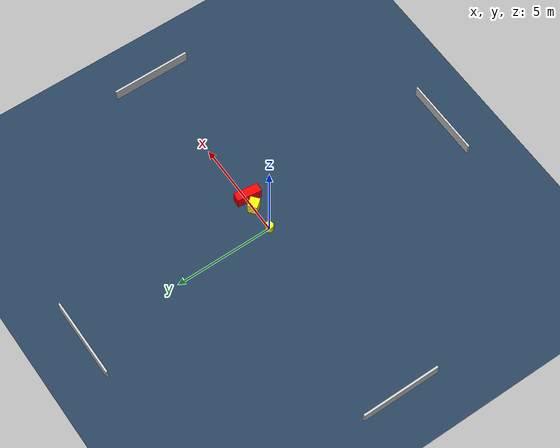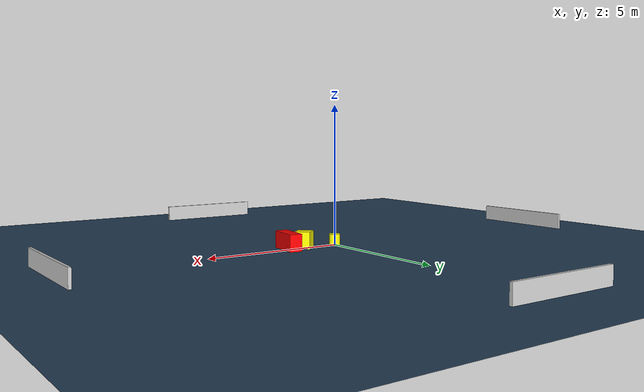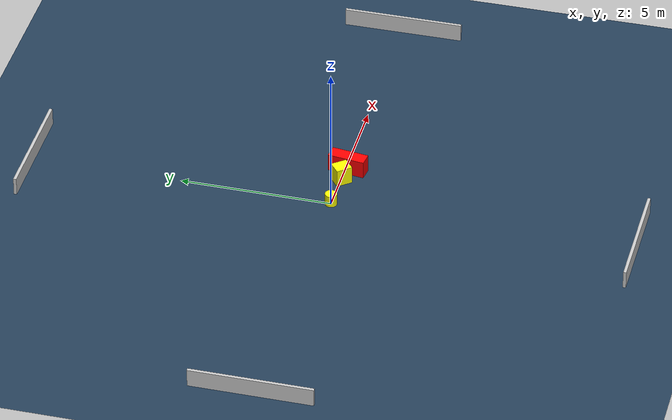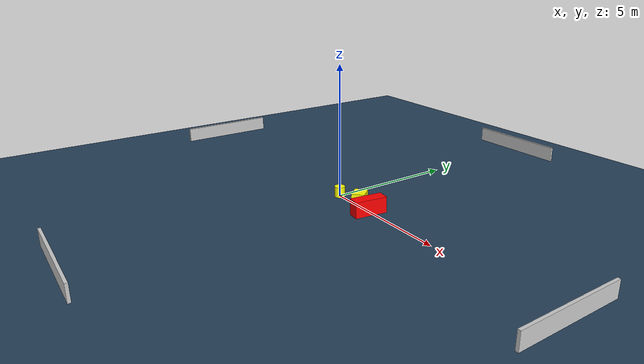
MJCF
<?xml version="1.0" ?>
<mujoco model="generated_environment">
  <option timestep="0.01" integrator="RK4" cone="elliptic"/>
  <default>
    <geom density="1"/>
  </default>
  <asset>
    <texture builtin="gradient" height="3072" name="skybox" rgb1="0.3 0.5 0.7" rgb2="0 0 0" type="skybox" width="512"/>
    <texture builtin="checker" height="300" name="groundplane" rgb1="0.2 0.3 0.4" rgb2="0.1 0.2 0.3" type="2d" width="300"/>
    <material name="groundplane" reflectance="0.2" texrepeat="5 5" texture="groundplane"/>
  </asset>
  <worldbody>
    <light dir="0 0 -1" directional="true" pos="0 0 1.5"/>
    <geom condim="3" friction="0.5 0.005 0.001" material="groundplane" name="floor" pos="0 0 0" size="0 0 0.05" type="plane"/>
    <body name="walls">
      <geom name="wall_1" condim="4" pos="-10.0 0.0 0.3" rgba="0.800000011920929 0.800000011920929 0.800000011920929 1.0" size="0.05 2.0 0.3" type="box"/>
      <geom name="wall_2" condim="4" pos="10.0 0.0 0.3" rgba="0.800000011920929 0.800000011920929 0.800000011920929 1.0" size="0.05 2.0 0.3" type="box"/>
      <geom name="wall_3" condim="4" pos="0.0 -10.0 0.3" rgba="0.800000011920929 0.800000011920929 0.800000011920929 1.0" size="2.0 0.05 0.3" type="box"/>
      <geom name="wall_4" condim="4" pos="0.0 10.0 0.3" rgba="0.800000011920929 0.800000011920929 0.800000011920929 1.0" size="2.0 0.05 0.3" type="box"/>
    </body>
    <body name="robot">
      <joint name="joint_x" type="slide" pos="0 0 0" axis="1 0 0"/>
      <joint name="joint_y" type="slide" pos="0 0 0" axis="0 1 0"/>
      <geom name="robot" type="cylinder" pos="0.0 0.0 0.2" size="0.2 0.2 0.0" mass="5.0" friction="1.0 0.005 0.0001" condim="4" rgba="1.0 1.0 0.0 1.0"/>
    </body>
    <body name="obstacle_1_movable">
      <geom name="obstacle_1_movable" condim="4" pos="1.2880112989132377 -0.0246184036418593 0.3" euler="0 0 219.01178556573976" friction="0.0 0.005 0.001" rgba="1.0 1.0 0.0 1.0" size="0.23719771723882704 0.27046161876808483 0.3" type="box" mass="0.1"/>
      <joint type="free"/>
    </body>
    <body name="obstacle_2_static">
      <geom name="obstacle_2_static" condim="4" pos="1.896466634440002 -0.09296478879028179 0.3" euler="0 0 172.34287707249905" friction="0.0 0.005 0.001" rgba="1.0 0.0 0.0 1.0" size="0.22363471732437545 0.6134565685726796 0.3" type="box"/>
    </body>
  </worldbody>
  <actuator>
    <motor name="actuator_x" joint="joint_x" gear="1" ctrlrange="-1 1"/>
    <motor name="actuator_y" joint="joint_y" gear="1" ctrlrange="-1 1"/>
  </actuator>
</mujoco>
